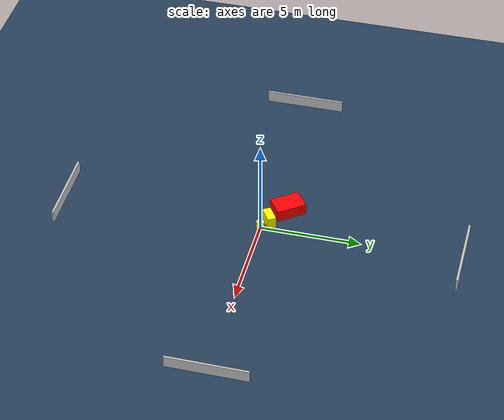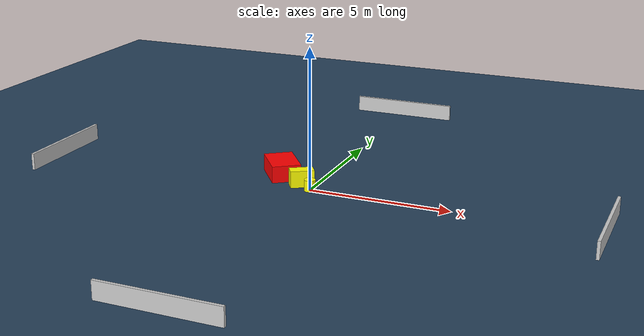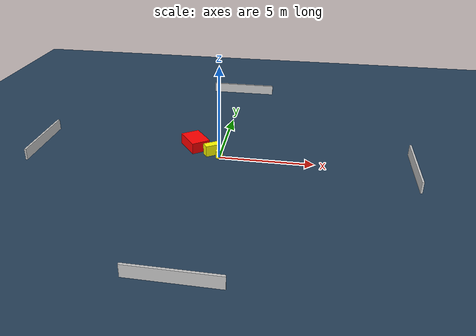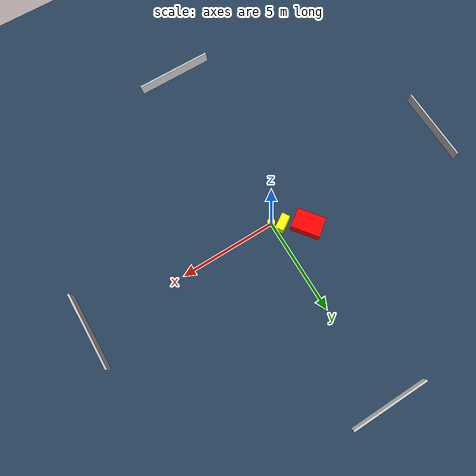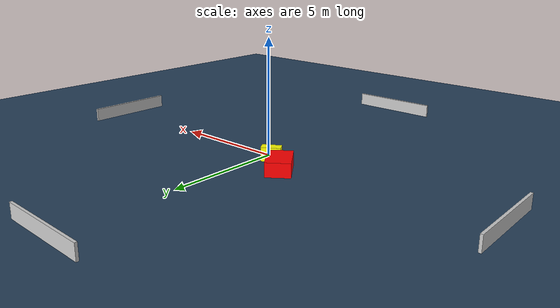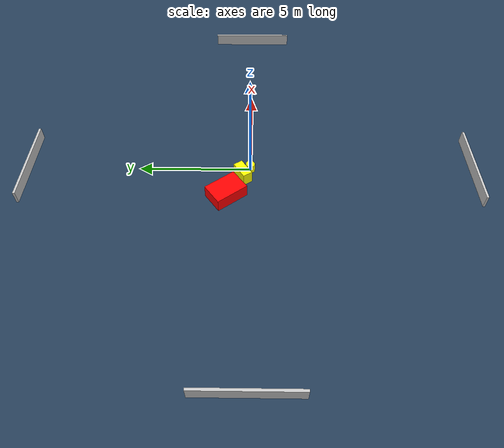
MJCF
<?xml version="1.0" ?>
<mujoco model="generated_environment">
  <option timestep="0.01" integrator="RK4" cone="elliptic"/>
  <default>
    <geom density="1"/>
  </default>
  <asset>
    <texture builtin="gradient" height="3072" name="skybox" rgb1="0.3 0.5 0.7" rgb2="0 0 0" type="skybox" width="512"/>
    <texture builtin="checker" height="300" name="groundplane" rgb1="0.2 0.3 0.4" rgb2="0.1 0.2 0.3" type="2d" width="300"/>
    <material name="groundplane" reflectance="0.2" texrepeat="5 5" texture="groundplane"/>
  </asset>
  <worldbody>
    <light dir="0 0 -1" directional="true" pos="0 0 1.5"/>
    <geom condim="3" friction="0.5 0.005 0.001" material="groundplane" name="floor" pos="0 0 0" size="0 0 0.05" type="plane"/>
    <body name="walls">
      <geom name="wall_1" condim="4" pos="-10.0 0.0 0.3" rgba="0.800000011920929 0.800000011920929 0.800000011920929 1.0" size="0.05 2.0 0.3" type="box"/>
      <geom name="wall_2" condim="4" pos="10.0 0.0 0.3" rgba="0.800000011920929 0.800000011920929 0.800000011920929 1.0" size="0.05 2.0 0.3" type="box"/>
      <geom name="wall_3" condim="4" pos="0.0 -10.0 0.3" rgba="0.800000011920929 0.800000011920929 0.800000011920929 1.0" size="2.0 0.05 0.3" type="box"/>
      <geom name="wall_4" condim="4" pos="0.0 10.0 0.3" rgba="0.800000011920929 0.800000011920929 0.800000011920929 1.0" size="2.0 0.05 0.3" type="box"/>
    </body>
    <body name="robot">
      <joint name="joint_x" type="slide" pos="0 0 0" axis="1 0 0"/>
      <joint name="joint_y" type="slide" pos="0 0 0" axis="0 1 0"/>
      <geom name="robot" type="cylinder" pos="0.0 0.0 0.2" size="0.2 0.2 0.0" mass="5.0" friction="1.0 0.005 0.0001" condim="4" rgba="1.0 1.0 0.0 1.0"/>
    </body>
    <body name="obstacle_1_movable">
      <geom name="obstacle_1_movable" condim="4" pos="-0.45179214705253645 0.3357847345900371 0.3" euler="0 0 302.88886755806794" friction="0.0 0.005 0.001" rgba="1.0 1.0 0.0 1.0" size="0.21496474438620194 0.4178679023488042 0.3" type="box" mass="0.1"/>
      <joint type="free"/>
    </body>
    <body name="obstacle_2_static">
      <geom name="obstacle_2_static" condim="4" pos="-1.5124868775434543 1.0391412807721716 0.3" euler="0 0 126.7372560868208" friction="0.0 0.005 0.001" rgba="1.0 0.0 0.0 1.0" size="0.7487225102774875 0.5156109481648697 0.3" type="box"/>
    </body>
  </worldbody>
  <actuator>
    <motor name="actuator_x" joint="joint_x" gear="1" ctrlrange="-1 1"/>
    <motor name="actuator_y" joint="joint_y" gear="1" ctrlrange="-1 1"/>
  </actuator>
</mujoco>
